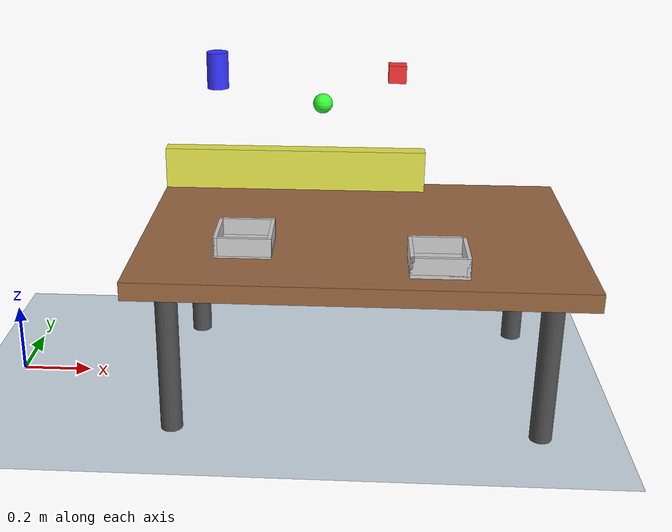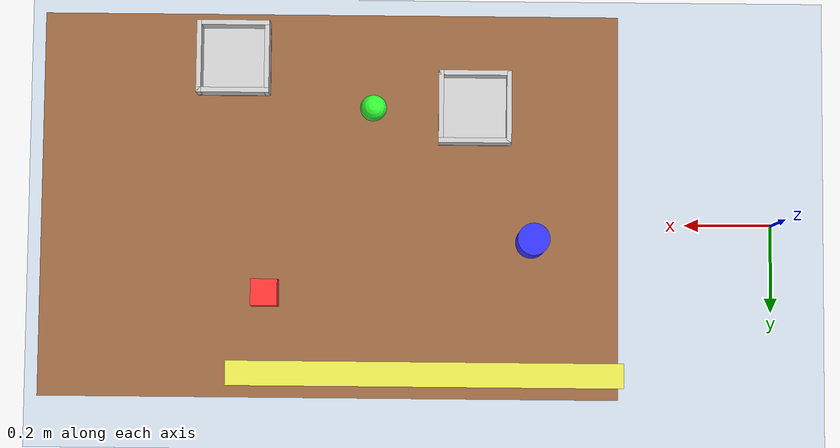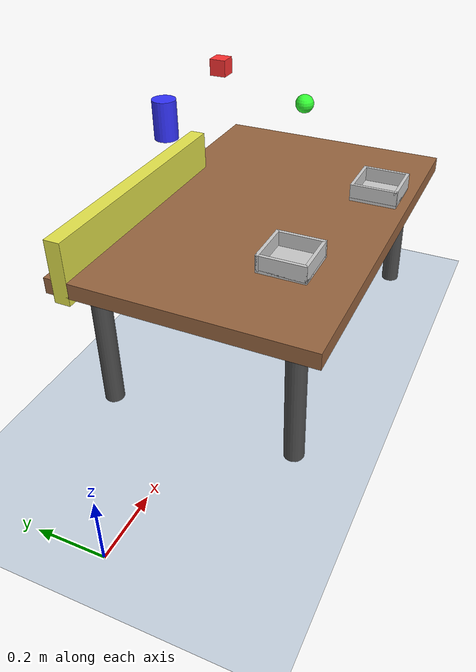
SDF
<?xml version="1.0" ?>
<sdf version="1.8">
  <world name="pick_place_world">

    <!-- Physics Settings -->
    <physics name="1ms" type="ignored">
      <max_step_size>0.001</max_step_size>
      <real_time_factor>1.0</real_time_factor>
      <real_time_update_rate>1000</real_time_update_rate>
    </physics>

    <!-- Plugin for physics -->
    <plugin filename="ignition-gazebo-physics-system" name="ignition::gazebo::systems::Physics">
    </plugin>

    <!-- Plugin for user commands -->
    <plugin filename="ignition-gazebo-user-commands-system" name="ignition::gazebo::systems::UserCommands">
    </plugin>

    <!-- Plugin for scene broadcasting -->
    <plugin filename="ignition-gazebo-scene-broadcaster-system" name="ignition::gazebo::systems::SceneBroadcaster">
    </plugin>

    <!-- Plugin for contact system -->
    <plugin filename="ignition-gazebo-contact-system" name="ignition::gazebo::systems::Contact">
    </plugin>

    <!-- Gravity -->
    <gravity>0 0 -9.8</gravity>

    <!-- Magnetic field -->
    <magnetic_field>6e-06 2.3e-05 -4.2e-05</magnetic_field>

    <!-- Atmosphere model -->
    <atmosphere type="adiabatic"/>

    <!-- Scene settings -->
    <scene>
      <ambient>0.2 0.2 0.3 1</ambient>
      <background>0.8 0.9 1.0 1</background>
      <shadows>true</shadows>
      <grid>true</grid>
    </scene>

    <!-- Sun light -->
    <light type="directional" name="sun">
      <cast_shadows>true</cast_shadows>
      <pose>0 0 10 0 0 0</pose>
      <diffuse>1.0 0.95 0.8 1</diffuse>
      <specular>0.8 0.8 0.8 1</specular>
      <direction>-0.3 0.2 -0.9</direction>
    </light>

    <!-- Point light above workspace -->
    <light type="point" name="workspace_light">
      <cast_shadows>false</cast_shadows>
      <pose>0 0 2 0 0 0</pose>
      <diffuse>0.6 0.6 0.7 1</diffuse>
      <specular>0.3 0.3 0.3 1</specular>
      <attenuation>
        <range>10</range>
        <linear>0.1</linear>
        <constant>0.1</constant>
        <quadratic>0.01</quadratic>
      </attenuation>
    </light>

    <!-- Ground plane -->
    <model name="ground_plane">
      <static>true</static>
      <link name="link">
        <collision name="collision">
          <geometry>
            <plane>
              <normal>0 0 1</normal>
              <size>20 20</size>
            </plane>
          </geometry>
        </collision>
        <visual name="visual">
          <geometry>
            <plane>
              <normal>0 0 1</normal>
              <size>20 20</size>
            </plane>
          </geometry>
          <material>
            <ambient>0.6 0.65 0.7 1</ambient>
            <diffuse>0.8 0.85 0.9 1</diffuse>
            <specular>0.1 0.1 0.1 1</specular>
            <emissive>0 0 0 1</emissive>
          </material>
        </visual>
      </link>
    </model>

    <!-- Work table -->
    <model name="work_table">
      <static>true</static>
      <pose>1 0 0 0 0 0</pose>
      <link name="table_link">
        <!-- Table top -->
        <collision name="table_top_collision">
          <pose>0 0 0.45 0 0 0</pose>
          <geometry>
            <box>
              <size>1.2 0.8 0.05</size>
            </box>
          </geometry>
        </collision>
        <visual name="table_top_visual">
          <pose>0 0 0.45 0 0 0</pose>
          <geometry>
            <box>
              <size>1.2 0.8 0.05</size>
            </box>
          </geometry>
          <material>
            <ambient>0.4 0.25 0.15 1</ambient>
            <diffuse>0.6 0.4 0.25 1</diffuse>
            <specular>0.3 0.3 0.3 1</specular>
            <emissive>0 0 0 1</emissive>
          </material>
        </visual>

        <!-- Table legs -->
        <collision name="leg1_collision">
          <pose>0.5 0.3 0.2 0 0 0</pose>
          <geometry>
            <cylinder>
              <radius>0.03</radius>
              <length>0.4</length>
            </cylinder>
          </geometry>
        </collision>
        <visual name="leg1_visual">
          <pose>0.5 0.3 0.2 0 0 0</pose>
          <geometry>
            <cylinder>
              <radius>0.03</radius>
              <length>0.4</length>
            </cylinder>
          </geometry>
          <material>
            <ambient>0.2 0.2 0.2 1</ambient>
            <diffuse>0.3 0.3 0.3 1</diffuse>
            <specular>0.1 0.1 0.1 1</specular>
          </material>
        </visual>

        <collision name="leg2_collision">
          <pose>-0.5 0.3 0.2 0 0 0</pose>
          <geometry>
            <cylinder>
              <radius>0.03</radius>
              <length>0.4</length>
            </cylinder>
          </geometry>
        </collision>
        <visual name="leg2_visual">
          <pose>-0.5 0.3 0.2 0 0 0</pose>
          <geometry>
            <cylinder>
              <radius>0.03</radius>
              <length>0.4</length>
            </cylinder>
          </geometry>
          <material>
            <ambient>0.2 0.2 0.2 1</ambient>
            <diffuse>0.3 0.3 0.3 1</diffuse>
            <specular>0.1 0.1 0.1 1</specular>
          </material>
        </visual>

        <collision name="leg3_collision">
          <pose>0.5 -0.3 0.2 0 0 0</pose>
          <geometry>
            <cylinder>
              <radius>0.03</radius>
              <length>0.4</length>
            </cylinder>
          </geometry>
        </collision>
        <visual name="leg3_visual">
          <pose>0.5 -0.3 0.2 0 0 0</pose>
          <geometry>
            <cylinder>
              <radius>0.03</radius>
              <length>0.4</length>
            </cylinder>
          </geometry>
          <material>
            <ambient>0.2 0.2 0.2 1</ambient>
            <diffuse>0.3 0.3 0.3 1</diffuse>
            <specular>0.1 0.1 0.1 1</specular>
          </material>
        </visual>

        <collision name="leg4_collision">
          <pose>-0.5 -0.3 0.2 0 0 0</pose>
          <geometry>
            <cylinder>
              <radius>0.03</radius>
              <length>0.4</length>
            </cylinder>
          </geometry>
        </collision>
        <visual name="leg4_visual">
          <pose>-0.5 -0.3 0.2 0 0 0</pose>
          <geometry>
            <cylinder>
              <radius>0.03</radius>
              <length>0.4</length>
            </cylinder>
          </geometry>
          <material>
            <ambient>0.2 0.2 0.2 1</ambient>
            <diffuse>0.3 0.3 0.3 1</diffuse>
            <specular>0.1 0.1 0.1 1</specular>
          </material>
        </visual>
      </link>
    </model>

    <!-- Red cube for manipulation -->
    <model name="red_cube">
      <pose>1.1 0.2 0.875 0 0 0</pose>
      <link name="link">
        <inertial>
          <mass>0.1</mass>
          <inertia>
            <ixx>0.000167</ixx>
            <iyy>0.000167</iyy>
            <izz>0.000167</izz>
          </inertia>
        </inertial>
        <collision name="collision">
          <geometry>
            <box>
              <size>0.05 0.05 0.05</size>
            </box>
          </geometry>
          <surface>
            <contact>
              <ode>
                <mu>0.6</mu>
                <mu2>0.6</mu2>
              </ode>
            </contact>
            <friction>
              <ode>
                <mu>0.6</mu>
                <mu2>0.6</mu2>
              </ode>
            </friction>
          </surface>
        </collision>
        <visual name="visual">
          <geometry>
            <box>
              <size>0.05 0.05 0.05</size>
            </box>
          </geometry>
          <material>
            <ambient>0.8 0.2 0.2 1</ambient>
            <diffuse>1.0 0.2 0.2 1</diffuse>
            <specular>0.5 0.5 0.5 1</specular>
          </material>
        </visual>
      </link>
    </model>

    <!-- Blue cylinder -->
    <model name="blue_cylinder">
      <pose>0.6 0.1 0.9 0 0 0</pose>
      <link name="link">
        <inertial>
          <mass>0.15</mass>
          <inertia>
            <ixx>0.000375</ixx>
            <iyy>0.000375</iyy>
            <izz>0.0001875</izz>
          </inertia>
        </inertial>
        <collision name="collision">
          <geometry>
            <cylinder>
              <radius>0.03</radius>
              <length>0.1</length>
            </cylinder>
          </geometry>
          <surface>
            <contact>
              <ode>
                <mu>0.6</mu>
                <mu2>0.6</mu2>
              </ode>
            </contact>
            <friction>
              <ode>
                <mu>0.6</mu>
                <mu2>0.6</mu2>
              </ode>
            </friction>
          </surface>
        </collision>
        <visual name="visual">
          <geometry>
            <cylinder>
              <radius>0.03</radius>
              <length>0.1</length>
            </cylinder>
          </geometry>
          <material>
            <ambient>0.2 0.2 0.8 1</ambient>
            <diffuse>0.2 0.2 1.0 1</diffuse>
            <specular>0.5 0.5 0.5 1</specular>
          </material>
        </visual>
      </link>
    </model>

    <!-- Green sphere -->
    <model name="green_sphere">
      <pose>0.9 -0.15 0.875 0 0 0</pose>
      <link name="link">
        <inertial>
          <mass>0.08</mass>
          <inertia>
            <ixx>0.000032</ixx>
            <iyy>0.000032</iyy>
            <izz>0.000032</izz>
          </inertia>
        </inertial>
        <collision name="collision">
          <geometry>
            <sphere>
              <radius>0.025</radius>
            </sphere>
          </geometry>
          <surface>
            <contact>
              <ode>
                <mu>0.8</mu>
                <mu2>0.8</mu2>
              </ode>
            </contact>
            <friction>
              <ode>
                <mu>0.8</mu>
                <mu2>0.8</mu2>
              </ode>
            </friction>
          </surface>
        </collision>
        <visual name="visual">
          <geometry>
            <sphere>
              <radius>0.025</radius>
            </sphere>
          </geometry>
          <material>
            <ambient>0.2 0.8 0.2 1</ambient>
            <diffuse>0.2 1.0 0.2 1</diffuse>
            <specular>0.5 0.5 0.5 1</specular>
          </material>
        </visual>
      </link>
    </model>

    <!-- Target bins/containers -->
    <model name="target_bin_1">
      <static>true</static>
      <pose>0.7 -0.2 0.5 0 0 0</pose>
      <link name="link">
        <!-- Bottom -->
        <collision name="bottom_collision">
          <pose>0 0 0 0 0 0</pose>
          <geometry>
            <box>
              <size>0.15 0.15 0.01</size>
            </box>
          </geometry>
        </collision>
        <visual name="bottom_visual">
          <pose>0 0 0 0 0 0</pose>
          <geometry>
            <box>
              <size>0.15 0.15 0.01</size>
            </box>
          </geometry>
          <material>
            <ambient>0.6 0.6 0.6 1</ambient>
            <diffuse>0.8 0.8 0.8 1</diffuse>
          </material>
        </visual>

        <!-- Walls -->
        <collision name="wall1_collision">
          <pose>0.07 0 0.025 0 0 0</pose>
          <geometry>
            <box>
              <size>0.01 0.15 0.05</size>
            </box>
          </geometry>
        </collision>
        <visual name="wall1_visual">
          <pose>0.07 0 0.025 0 0 0</pose>
          <geometry>
            <box>
              <size>0.01 0.15 0.05</size>
            </box>
          </geometry>
          <material>
            <ambient>0.6 0.6 0.6 1</ambient>
            <diffuse>0.8 0.8 0.8 1</diffuse>
          </material>
        </visual>

        <collision name="wall2_collision">
          <pose>-0.07 0 0.025 0 0 0</pose>
          <geometry>
            <box>
              <size>0.01 0.15 0.05</size>
            </box>
          </geometry>
        </collision>
        <visual name="wall2_visual">
          <pose>-0.07 0 0.025 0 0 0</pose>
          <geometry>
            <box>
              <size>0.01 0.15 0.05</size>
            </box>
          </geometry>
          <material>
            <ambient>0.6 0.6 0.6 1</ambient>
            <diffuse>0.8 0.8 0.8 1</diffuse>
          </material>
        </visual>

        <collision name="wall3_collision">
          <pose>0 0.07 0.025 0 0 0</pose>
          <geometry>
            <box>
              <size>0.15 0.01 0.05</size>
            </box>
          </geometry>
        </collision>
        <visual name="wall3_visual">
          <pose>0 0.07 0.025 0 0 0</pose>
          <geometry>
            <box>
              <size>0.15 0.01 0.05</size>
            </box>
          </geometry>
          <material>
            <ambient>0.6 0.6 0.6 1</ambient>
            <diffuse>0.8 0.8 0.8 1</diffuse>
          </material>
        </visual>

        <collision name="wall4_collision">
          <pose>0 -0.07 0.025 0 0 0</pose>
          <geometry>
            <box>
              <size>0.15 0.01 0.05</size>
            </box>
          </geometry>
        </collision>
        <visual name="wall4_visual">
          <pose>0 -0.07 0.025 0 0 0</pose>
          <geometry>
            <box>
              <size>0.15 0.01 0.05</size>
            </box>
          </geometry>
          <material>
            <ambient>0.6 0.6 0.6 1</ambient>
            <diffuse>0.8 0.8 0.8 1</diffuse>
          </material>
        </visual>
      </link>
    </model>

    <!-- Second target bin -->
    <model name="target_bin_2">
      <static>true</static>
      <pose>1.2 -0.3 0.5 0 0 0</pose>
      <link name="link">
        <!-- Bottom -->
        <collision name="bottom_collision">
          <pose>0 0 0 0 0 0</pose>
          <geometry>
            <box>
              <size>0.15 0.15 0.01</size>
            </box>
          </geometry>
        </collision>
        <visual name="bottom_visual">
          <pose>0 0 0 0 0 0</pose>
          <geometry>
            <box>
              <size>0.15 0.15 0.01</size>
            </box>
          </geometry>
          <material>
            <ambient>0.6 0.6 0.6 1</ambient>
            <diffuse>0.8 0.8 0.8 1</diffuse>
          </material>
        </visual>

        <!-- Walls (similar to bin 1) -->
        <collision name="wall1_collision">
          <pose>0.07 0 0.025 0 0 0</pose>
          <geometry>
            <box>
              <size>0.01 0.15 0.05</size>
            </box>
          </geometry>
        </collision>
        <visual name="wall1_visual">
          <pose>0.07 0 0.025 0 0 0</pose>
          <geometry>
            <box>
              <size>0.01 0.15 0.05</size>
            </box>
          </geometry>
          <material>
            <ambient>0.6 0.6 0.6 1</ambient>
            <diffuse>0.8 0.8 0.8 1</diffuse>
          </material>
        </visual>

        <collision name="wall2_collision">
          <pose>-0.07 0 0.025 0 0 0</pose>
          <geometry>
            <box>
              <size>0.01 0.15 0.05</size>
            </box>
          </geometry>
        </collision>
        <visual name="wall2_visual">
          <pose>-0.07 0 0.025 0 0 0</pose>
          <geometry>
            <box>
              <size>0.01 0.15 0.05</size>
            </box>
          </geometry>
          <material>
            <ambient>0.6 0.6 0.6 1</ambient>
            <diffuse>0.8 0.8 0.8 1</diffuse>
          </material>
        </visual>

        <collision name="wall3_collision">
          <pose>0 0.07 0.025 0 0 0</pose>
          <geometry>
            <box>
              <size>0.15 0.01 0.05</size>
            </box>
          </geometry>
        </collision>
        <visual name="wall3_visual">
          <pose>0 0.07 0.025 0 0 0</pose>
          <geometry>
            <box>
              <size>0.15 0.01 0.05</size>
            </box>
          </geometry>
          <material>
            <ambient>0.6 0.6 0.6 1</ambient>
            <diffuse>0.8 0.8 0.8 1</diffuse>
          </material>
        </visual>

        <collision name="wall4_collision">
          <pose>0 -0.07 0.025 0 0 0</pose>
          <geometry>
            <box>
              <size>0.15 0.01 0.05</size>
            </box>
          </geometry>
        </collision>
        <visual name="wall4_visual">
          <pose>0 -0.07 0.025 0 0 0</pose>
          <geometry>
            <box>
              <size>0.15 0.01 0.05</size>
            </box>
          </geometry>
          <material>
            <ambient>0.6 0.6 0.6 1</ambient>
            <diffuse>0.8 0.8 0.8 1</diffuse>
          </material>
        </visual>
      </link>
    </model>

    <!-- Obstacle for added complexity -->
    <model name="obstacle">
      <static>true</static>
      <pose>0.8 0.35 0.5 0 0 0</pose>
      <link name="link">
        <collision name="collision">
          <geometry>
            <box>
              <size>0.8 0.05 0.2</size>
            </box>
          </geometry>
        </collision>
        <visual name="visual">
          <geometry>
            <box>
              <size>0.8 0.05 0.2</size>
            </box>
          </geometry>
          <material>
            <ambient>0.7 0.7 0.2 1</ambient>
            <diffuse>0.9 0.9 0.3 1</diffuse>
            <specular>0.1 0.1 0.1 1</specular>
          </material>
        </visual>
      </link>
    </model>

  </world>
</sdf>
